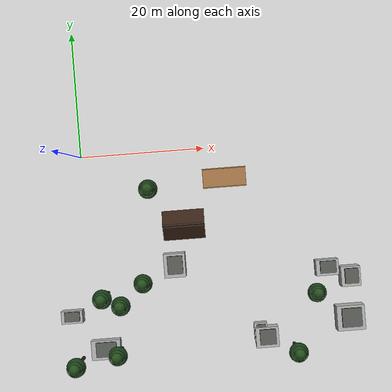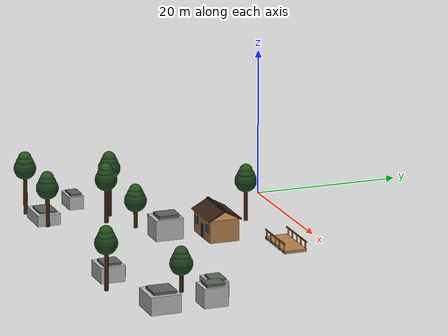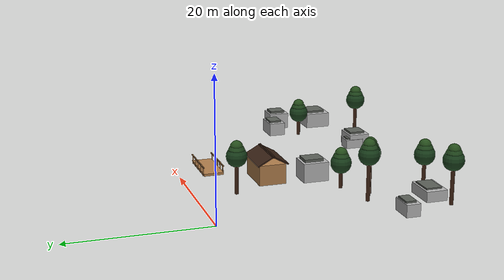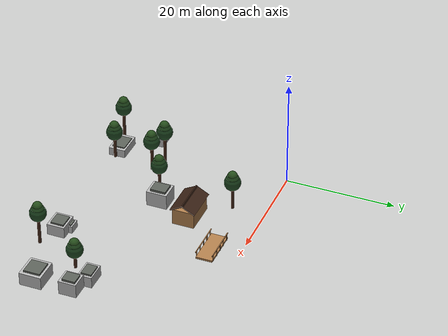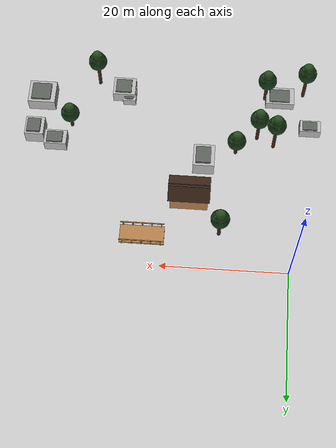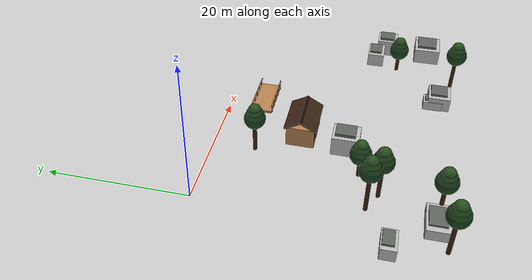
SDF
<sdf version="1.5">
 <world name="forest_rescue">
  <include><uri>model://sun</uri></include>
  <model name="pine_02">
   <static>true</static>
   <pose>11 -6 .003 0 0 0</pose>
   <link name="structure">
    <visual name="trunk_visual">
     <pose>0 0 3.282756484514435 0.0 0 0</pose>
     <geometry><cylinder><radius>0.28</radius><length>6.56551296902887</length></cylinder></geometry>
     <material><ambient>0.24 0.13 0.07 1</ambient><diffuse>0.24 0.13 0.07 1</diffuse></material>
    </visual>
    <collision name="trunk_collision">
     <pose>0 0 3.282756484514435 0.0 0 0</pose>
     <geometry><cylinder><radius>0.28</radius><length>6.56551296902887</length></cylinder></geometry>
    </collision>
    <visual name="canopy0_visual">
     <pose>0 0 5.46551296902887 0.0 0 0</pose>
     <geometry><sphere><radius>1.5</radius></sphere></geometry>
     <material><ambient>0.1 0.25 0.11 1</ambient><diffuse>0.1 0.25 0.11 1</diffuse></material>
    </visual>
    <collision name="canopy0_collision">
     <pose>0 0 5.46551296902887 0.0 0 0</pose>
     <geometry><sphere><radius>1.5</radius></sphere></geometry>
    </collision>
    <visual name="canopy1_visual">
     <pose>0 0 6.16551296902887 0.0 0 0</pose>
     <geometry><sphere><radius>1.2</radius></sphere></geometry>
     <material><ambient>0.125 0.28 0.11 1</ambient><diffuse>0.125 0.28 0.11 1</diffuse></material>
    </visual>
    <collision name="canopy1_collision">
     <pose>0 0 6.16551296902887 0.0 0 0</pose>
     <geometry><sphere><radius>1.2</radius></sphere></geometry>
    </collision>
    <visual name="canopy2_visual">
     <pose>0 0 6.86551296902887 0.0 0 0</pose>
     <geometry><sphere><radius>0.9</radius></sphere></geometry>
     <material>
      <ambient>0.15000000000000002 0.31 0.11 1</ambient>
      <diffuse>0.15000000000000002 0.31 0.11 1</diffuse>
     </material>
    </visual>
    <collision name="canopy2_collision">
     <pose>0 0 6.86551296902887 0.0 0 0</pose>
     <geometry><sphere><radius>0.9</radius></sphere></geometry>
    </collision>
   </link>
  </model>
  <model name="pine_10">
   <static>true</static>
   <pose>4.401859159384514 -31.439571008390693 .003 0 0 0</pose>
   <link name="structure">
    <visual name="trunk_visual">
     <pose>0 0 3.1897114368823436 0.0 0 0</pose>
     <geometry><cylinder><radius>0.28</radius><length>6.379422873764687</length></cylinder></geometry>
     <material><ambient>0.24 0.13 0.07 1</ambient><diffuse>0.24 0.13 0.07 1</diffuse></material>
    </visual>
    <collision name="trunk_collision">
     <pose>0 0 3.1897114368823436 0.0 0 0</pose>
     <geometry><cylinder><radius>0.28</radius><length>6.379422873764687</length></cylinder></geometry>
    </collision>
    <visual name="canopy0_visual">
     <pose>0 0 5.2794228737646876 0.0 0 0</pose>
     <geometry><sphere><radius>1.5</radius></sphere></geometry>
     <material><ambient>0.1 0.25 0.11 1</ambient><diffuse>0.1 0.25 0.11 1</diffuse></material>
    </visual>
    <collision name="canopy0_collision">
     <pose>0 0 5.2794228737646876 0.0 0 0</pose>
     <geometry><sphere><radius>1.5</radius></sphere></geometry>
    </collision>
    <visual name="canopy1_visual">
     <pose>0 0 5.979422873764688 0.0 0 0</pose>
     <geometry><sphere><radius>1.2</radius></sphere></geometry>
     <material><ambient>0.125 0.28 0.11 1</ambient><diffuse>0.125 0.28 0.11 1</diffuse></material>
    </visual>
    <collision name="canopy1_collision">
     <pose>0 0 5.979422873764688 0.0 0 0</pose>
     <geometry><sphere><radius>1.2</radius></sphere></geometry>
    </collision>
    <visual name="canopy2_visual">
     <pose>0 0 6.679422873764688 0.0 0 0</pose>
     <geometry><sphere><radius>0.9</radius></sphere></geometry>
     <material>
      <ambient>0.15000000000000002 0.31 0.11 1</ambient>
      <diffuse>0.15000000000000002 0.31 0.11 1</diffuse>
     </material>
    </visual>
    <collision name="canopy2_collision">
     <pose>0 0 6.679422873764688 0.0 0 0</pose>
     <geometry><sphere><radius>0.9</radius></sphere></geometry>
    </collision>
   </link>
  </model>
  <model name="pine_11">
   <static>true</static>
   <pose>32.27721918303213 -32.773296746654836 .003 0 0 0</pose>
   <link name="structure">
    <visual name="trunk_visual">
     <pose>0 0 3.6586376060321912 0.0 0 0</pose>
     <geometry><cylinder><radius>0.28</radius><length>7.3172752120643825</length></cylinder></geometry>
     <material><ambient>0.24 0.13 0.07 1</ambient><diffuse>0.24 0.13 0.07 1</diffuse></material>
    </visual>
    <collision name="trunk_collision">
     <pose>0 0 3.6586376060321912 0.0 0 0</pose>
     <geometry><cylinder><radius>0.28</radius><length>7.3172752120643825</length></cylinder></geometry>
    </collision>
    <visual name="canopy0_visual">
     <pose>0 0 6.217275212064383 0.0 0 0</pose>
     <geometry><sphere><radius>1.5</radius></sphere></geometry>
     <material><ambient>0.1 0.25 0.11 1</ambient><diffuse>0.1 0.25 0.11 1</diffuse></material>
    </visual>
    <collision name="canopy0_collision">
     <pose>0 0 6.217275212064383 0.0 0 0</pose>
     <geometry><sphere><radius>1.5</radius></sphere></geometry>
    </collision>
    <visual name="canopy1_visual">
     <pose>0 0 6.917275212064383 0.0 0 0</pose>
     <geometry><sphere><radius>1.2</radius></sphere></geometry>
     <material><ambient>0.125 0.28 0.11 1</ambient><diffuse>0.125 0.28 0.11 1</diffuse></material>
    </visual>
    <collision name="canopy1_collision">
     <pose>0 0 6.917275212064383 0.0 0 0</pose>
     <geometry><sphere><radius>1.2</radius></sphere></geometry>
    </collision>
    <visual name="canopy2_visual">
     <pose>0 0 7.617275212064383 0.0 0 0</pose>
     <geometry><sphere><radius>0.9</radius></sphere></geometry>
     <material>
      <ambient>0.15000000000000002 0.31 0.11 1</ambient>
      <diffuse>0.15000000000000002 0.31 0.11 1</diffuse>
     </material>
    </visual>
    <collision name="canopy2_collision">
     <pose>0 0 7.617275212064383 0.0 0 0</pose>
     <geometry><sphere><radius>0.9</radius></sphere></geometry>
    </collision>
   </link>
  </model>
  <model name="pine_12">
   <static>true</static>
   <pose>2.8257024292998025 -22.289685519481477 .003 0 0 0</pose>
   <link name="structure">
    <visual name="trunk_visual">
     <pose>0 0 3.8603250835250256 0.0 0 0</pose>
     <geometry><cylinder><radius>0.28</radius><length>7.720650167050051</length></cylinder></geometry>
     <material><ambient>0.24 0.13 0.07 1</ambient><diffuse>0.24 0.13 0.07 1</diffuse></material>
    </visual>
    <collision name="trunk_collision">
     <pose>0 0 3.8603250835250256 0.0 0 0</pose>
     <geometry><cylinder><radius>0.28</radius><length>7.720650167050051</length></cylinder></geometry>
    </collision>
    <visual name="canopy0_visual">
     <pose>0 0 6.6206501670500515 0.0 0 0</pose>
     <geometry><sphere><radius>1.5</radius></sphere></geometry>
     <material><ambient>0.1 0.25 0.11 1</ambient><diffuse>0.1 0.25 0.11 1</diffuse></material>
    </visual>
    <collision name="canopy0_collision">
     <pose>0 0 6.6206501670500515 0.0 0 0</pose>
     <geometry><sphere><radius>1.5</radius></sphere></geometry>
    </collision>
    <visual name="canopy1_visual">
     <pose>0 0 7.320650167050052 0.0 0 0</pose>
     <geometry><sphere><radius>1.2</radius></sphere></geometry>
     <material><ambient>0.125 0.28 0.11 1</ambient><diffuse>0.125 0.28 0.11 1</diffuse></material>
    </visual>
    <collision name="canopy1_collision">
     <pose>0 0 7.320650167050052 0.0 0 0</pose>
     <geometry><sphere><radius>1.2</radius></sphere></geometry>
    </collision>
    <visual name="canopy2_visual">
     <pose>0 0 8.020650167050052 0.0 0 0</pose>
     <geometry><sphere><radius>0.9</radius></sphere></geometry>
     <material>
      <ambient>0.15000000000000002 0.31 0.11 1</ambient>
      <diffuse>0.15000000000000002 0.31 0.11 1</diffuse>
     </material>
    </visual>
    <collision name="canopy2_collision">
     <pose>0 0 8.020650167050052 0.0 0 0</pose>
     <geometry><sphere><radius>0.9</radius></sphere></geometry>
    </collision>
   </link>
  </model>
  <model name="pine_16">
   <static>true</static>
   <pose>36.11785193479706 -24.22285921925056 .003 0 0 0</pose>
   <link name="structure">
    <visual name="trunk_visual">
     <pose>0 0 2.412386381699358 0.0 0 0</pose>
     <geometry><cylinder><radius>0.28</radius><length>4.824772763398716</length></cylinder></geometry>
     <material><ambient>0.24 0.13 0.07 1</ambient><diffuse>0.24 0.13 0.07 1</diffuse></material>
    </visual>
    <collision name="trunk_collision">
     <pose>0 0 2.412386381699358 0.0 0 0</pose>
     <geometry><cylinder><radius>0.28</radius><length>4.824772763398716</length></cylinder></geometry>
    </collision>
    <visual name="canopy0_visual">
     <pose>0 0 3.724772763398716 0.0 0 0</pose>
     <geometry><sphere><radius>1.5</radius></sphere></geometry>
     <material><ambient>0.1 0.25 0.11 1</ambient><diffuse>0.1 0.25 0.11 1</diffuse></material>
    </visual>
    <collision name="canopy0_collision">
     <pose>0 0 3.724772763398716 0.0 0 0</pose>
     <geometry><sphere><radius>1.5</radius></sphere></geometry>
    </collision>
    <visual name="canopy1_visual">
     <pose>0 0 4.424772763398716 0.0 0 0</pose>
     <geometry><sphere><radius>1.2</radius></sphere></geometry>
     <material><ambient>0.125 0.28 0.11 1</ambient><diffuse>0.125 0.28 0.11 1</diffuse></material>
    </visual>
    <collision name="canopy1_collision">
     <pose>0 0 4.424772763398716 0.0 0 0</pose>
     <geometry><sphere><radius>1.2</radius></sphere></geometry>
    </collision>
    <visual name="canopy2_visual">
     <pose>0 0 5.124772763398716 0.0 0 0</pose>
     <geometry><sphere><radius>0.9</radius></sphere></geometry>
     <material>
      <ambient>0.15000000000000002 0.31 0.11 1</ambient>
      <diffuse>0.15000000000000002 0.31 0.11 1</diffuse>
     </material>
    </visual>
    <collision name="canopy2_collision">
     <pose>0 0 5.124772763398716 0.0 0 0</pose>
     <geometry><sphere><radius>0.9</radius></sphere></geometry>
    </collision>
   </link>
  </model>
  <model name="pine_18">
   <static>true</static>
   <pose>-1.957581145798457 -32.48798483389393 .003 0 0 0</pose>
   <link name="structure">
    <visual name="trunk_visual">
     <pose>0 0 3.7181511870655912 0.0 0 0</pose>
     <geometry><cylinder><radius>0.28</radius><length>7.4363023741311824</length></cylinder></geometry>
     <material><ambient>0.24 0.13 0.07 1</ambient><diffuse>0.24 0.13 0.07 1</diffuse></material>
    </visual>
    <collision name="trunk_collision">
     <pose>0 0 3.7181511870655912 0.0 0 0</pose>
     <geometry><cylinder><radius>0.28</radius><length>7.4363023741311824</length></cylinder></geometry>
    </collision>
    <visual name="canopy0_visual">
     <pose>0 0 6.336302374131183 0.0 0 0</pose>
     <geometry><sphere><radius>1.5</radius></sphere></geometry>
     <material><ambient>0.1 0.25 0.11 1</ambient><diffuse>0.1 0.25 0.11 1</diffuse></material>
    </visual>
    <collision name="canopy0_collision">
     <pose>0 0 6.336302374131183 0.0 0 0</pose>
     <geometry><sphere><radius>1.5</radius></sphere></geometry>
    </collision>
    <visual name="canopy1_visual">
     <pose>0 0 7.036302374131183 0.0 0 0</pose>
     <geometry><sphere><radius>1.2</radius></sphere></geometry>
     <material><ambient>0.125 0.28 0.11 1</ambient><diffuse>0.125 0.28 0.11 1</diffuse></material>
    </visual>
    <collision name="canopy1_collision">
     <pose>0 0 7.036302374131183 0.0 0 0</pose>
     <geometry><sphere><radius>1.2</radius></sphere></geometry>
    </collision>
    <visual name="canopy2_visual">
     <pose>0 0 7.736302374131183 0.0 0 0</pose>
     <geometry><sphere><radius>0.9</radius></sphere></geometry>
     <material>
      <ambient>0.15000000000000002 0.31 0.11 1</ambient>
      <diffuse>0.15000000000000002 0.31 0.11 1</diffuse>
     </material>
    </visual>
    <collision name="canopy2_collision">
     <pose>0 0 7.736302374131183 0.0 0 0</pose>
     <geometry><sphere><radius>0.9</radius></sphere></geometry>
    </collision>
   </link>
  </model>
  <model name="pine_22">
   <static>true</static>
   <pose>8.935093009944204 -20.753271993344555 .003 0 0 0</pose>
   <link name="structure">
    <visual name="trunk_visual">
     <pose>0 0 2.399018562959947 0.0 0 0</pose>
     <geometry><cylinder><radius>0.28</radius><length>4.798037125919894</length></cylinder></geometry>
     <material><ambient>0.24 0.13 0.07 1</ambient><diffuse>0.24 0.13 0.07 1</diffuse></material>
    </visual>
    <collision name="trunk_collision">
     <pose>0 0 2.399018562959947 0.0 0 0</pose>
     <geometry><cylinder><radius>0.28</radius><length>4.798037125919894</length></cylinder></geometry>
    </collision>
    <visual name="canopy0_visual">
     <pose>0 0 3.698037125919894 0.0 0 0</pose>
     <geometry><sphere><radius>1.5</radius></sphere></geometry>
     <material><ambient>0.1 0.25 0.11 1</ambient><diffuse>0.1 0.25 0.11 1</diffuse></material>
    </visual>
    <collision name="canopy0_collision">
     <pose>0 0 3.698037125919894 0.0 0 0</pose>
     <geometry><sphere><radius>1.5</radius></sphere></geometry>
    </collision>
    <visual name="canopy1_visual">
     <pose>0 0 4.398037125919894 0.0 0 0</pose>
     <geometry><sphere><radius>1.2</radius></sphere></geometry>
     <material><ambient>0.125 0.28 0.11 1</ambient><diffuse>0.125 0.28 0.11 1</diffuse></material>
    </visual>
    <collision name="canopy1_collision">
     <pose>0 0 4.398037125919894 0.0 0 0</pose>
     <geometry><sphere><radius>1.2</radius></sphere></geometry>
    </collision>
    <visual name="canopy2_visual">
     <pose>0 0 5.098037125919894 0.0 0 0</pose>
     <geometry><sphere><radius>0.9</radius></sphere></geometry>
     <material>
      <ambient>0.15000000000000002 0.31 0.11 1</ambient>
      <diffuse>0.15000000000000002 0.31 0.11 1</diffuse>
     </material>
    </visual>
    <collision name="canopy2_collision">
     <pose>0 0 5.098037125919894 0.0 0 0</pose>
     <geometry><sphere><radius>0.9</radius></sphere></geometry>
    </collision>
   </link>
  </model>
  <model name="pine_29">
   <static>true</static>
   <pose>5.519893759275888 -23.657242225206538 .003 0 0 0</pose>
   <link name="structure">
    <visual name="trunk_visual">
     <pose>0 0 3.5185168855151288 0.0 0 0</pose>
     <geometry><cylinder><radius>0.28</radius><length>7.0370337710302575</length></cylinder></geometry>
     <material><ambient>0.24 0.13 0.07 1</ambient><diffuse>0.24 0.13 0.07 1</diffuse></material>
    </visual>
    <collision name="trunk_collision">
     <pose>0 0 3.5185168855151288 0.0 0 0</pose>
     <geometry><cylinder><radius>0.28</radius><length>7.0370337710302575</length></cylinder></geometry>
    </collision>
    <visual name="canopy0_visual">
     <pose>0 0 5.937033771030258 0.0 0 0</pose>
     <geometry><sphere><radius>1.5</radius></sphere></geometry>
     <material><ambient>0.1 0.25 0.11 1</ambient><diffuse>0.1 0.25 0.11 1</diffuse></material>
    </visual>
    <collision name="canopy0_collision">
     <pose>0 0 5.937033771030258 0.0 0 0</pose>
     <geometry><sphere><radius>1.5</radius></sphere></geometry>
    </collision>
    <visual name="canopy1_visual">
     <pose>0 0 6.637033771030258 0.0 0 0</pose>
     <geometry><sphere><radius>1.2</radius></sphere></geometry>
     <material><ambient>0.125 0.28 0.11 1</ambient><diffuse>0.125 0.28 0.11 1</diffuse></material>
    </visual>
    <collision name="canopy1_collision">
     <pose>0 0 6.637033771030258 0.0 0 0</pose>
     <geometry><sphere><radius>1.2</radius></sphere></geometry>
    </collision>
    <visual name="canopy2_visual">
     <pose>0 0 7.337033771030258 0.0 0 0</pose>
     <geometry><sphere><radius>0.9</radius></sphere></geometry>
     <material>
      <ambient>0.15000000000000002 0.31 0.11 1</ambient>
      <diffuse>0.15000000000000002 0.31 0.11 1</diffuse>
     </material>
    </visual>
    <collision name="canopy2_collision">
     <pose>0 0 7.337033771030258 0.0 0 0</pose>
     <geometry><sphere><radius>0.9</radius></sphere></geometry>
    </collision>
   </link>
  </model>
  <model name="rock_06">
   <static>true</static>
   <pose>27.91122752140977 -31.016599547149305 .003 0 0 0</pose>
   <link name="structure">
    <visual name="stone_visual">
     <pose>0 0 1.0519309696424304 0.0 0 0</pose>
     <geometry><box><size>3.667579216460121 3.225950871608717 2.1038619392848608</size></box></geometry>
     <material>
      <script>
       <uri>file:///home/fxxk/px4_agent/scene/materials/scripts</uri>
       <uri>file:///home/fxxk/px4_agent/scene/materials/textures</uri>
       <name>Yard/concrete</name>
      </script>
     </material>
    </visual>
    <collision name="stone_collision">
     <pose>0 0 1.0519309696424304 0.0 0 0</pose>
     <geometry><box><size>3.667579216460121 3.225950871608717 2.1038619392848608</size></box></geometry>
    </collision>
    <visual name="cap_visual">
     <pose>0.1 0.1 2.1038619392848608 0.0 0 0</pose>
     <geometry><box><size>2.5673054515220843 2.4194631537065376 0.6311585817854583</size></box></geometry>
     <material><ambient>0.36 0.38 0.35 1</ambient><diffuse>0.36 0.38 0.35 1</diffuse></material>
    </visual>
    <collision name="cap_collision">
     <pose>0.1 0.1 2.1038619392848608 0.0 0 0</pose>
     <geometry><box><size>2.5673054515220843 2.4194631537065376 0.6311585817854583</size></box></geometry>
    </collision>
   </link>
  </model>
  <model name="rock_07">
   <static>true</static>
   <pose>41.8402032680344 -22.246830806683267 .003 0 0 0</pose>
   <link name="structure">
    <visual name="stone_visual">
     <pose>0 0 1.2779544305672321 0.0 0 0</pose>
     <geometry><box><size>3.066547165417459 3.183017940721278 2.5559088611344642</size></box></geometry>
     <material>
      <script>
       <uri>file:///home/fxxk/px4_agent/scene/materials/scripts</uri>
       <uri>file:///home/fxxk/px4_agent/scene/materials/textures</uri>
       <name>Yard/concrete</name>
      </script>
     </material>
    </visual>
    <collision name="stone_collision">
     <pose>0 0 1.2779544305672321 0.0 0 0</pose>
     <geometry><box><size>3.066547165417459 3.183017940721278 2.5559088611344642</size></box></geometry>
    </collision>
    <visual name="cap_visual">
     <pose>0.1 0.1 2.5559088611344642 0.0 0 0</pose>
     <geometry><box><size>2.1465830157922214 2.3872634555409586 0.7667726583403393</size></box></geometry>
     <material><ambient>0.36 0.38 0.35 1</ambient><diffuse>0.36 0.38 0.35 1</diffuse></material>
    </visual>
    <collision name="cap_collision">
     <pose>0.1 0.1 2.5559088611344642 0.0 0 0</pose>
     <geometry><box><size>2.1465830157922214 2.3872634555409586 0.7667726583403393</size></box></geometry>
    </collision>
   </link>
  </model>
  <model name="rock_08">
   <static>true</static>
   <pose>1.9577344423728462 -31.190890357344145 .003 0 0 0</pose>
   <link name="structure">
    <visual name="stone_visual">
     <pose>0 0 0.7681274315273037 0.0 0 0</pose>
     <geometry><box><size>4.695873700915582 3.1069405490903774 1.5362548630546073</size></box></geometry>
     <material>
      <script>
       <uri>file:///home/fxxk/px4_agent/scene/materials/scripts</uri>
       <uri>file:///home/fxxk/px4_agent/scene/materials/textures</uri>
       <name>Yard/concrete</name>
      </script>
     </material>
    </visual>
    <collision name="stone_collision">
     <pose>0 0 0.7681274315273037 0.0 0 0</pose>
     <geometry><box><size>4.695873700915582 3.1069405490903774 1.5362548630546073</size></box></geometry>
    </collision>
    <visual name="cap_visual">
     <pose>0.1 0.1 1.5362548630546073 0.0 0 0</pose>
     <geometry><box><size>3.287111590640907 2.330205411817783 0.4608764589163822</size></box></geometry>
     <material><ambient>0.36 0.38 0.35 1</ambient><diffuse>0.36 0.38 0.35 1</diffuse></material>
    </visual>
    <collision name="cap_collision">
     <pose>0.1 0.1 1.5362548630546073 0.0 0 0</pose>
     <geometry><box><size>3.287111590640907 2.330205411817783 0.4608764589163822</size></box></geometry>
    </collision>
   </link>
  </model>
  <model name="rock_09">
   <static>true</static>
   <pose>-3.0545503986861533 -25.50754463442579 .003 0 0 0</pose>
   <link name="structure">
    <visual name="stone_visual">
     <pose>0 0 0.8951410001223327 0.0 0 0</pose>
     <geometry><box><size>3.424779000568506 2.024200071308571 1.7902820002446653</size></box></geometry>
     <material>
      <script>
       <uri>file:///home/fxxk/px4_agent/scene/materials/scripts</uri>
       <uri>file:///home/fxxk/px4_agent/scene/materials/textures</uri>
       <name>Yard/concrete</name>
      </script>
     </material>
    </visual>
    <collision name="stone_collision">
     <pose>0 0 0.8951410001223327 0.0 0 0</pose>
     <geometry><box><size>3.424779000568506 2.024200071308571 1.7902820002446653</size></box></geometry>
    </collision>
    <visual name="cap_visual">
     <pose>0.1 0.1 1.7902820002446653 0.0 0 0</pose>
     <geometry><box><size>2.397345300397954 1.5181500534814283 0.5370846000733995</size></box></geometry>
     <material><ambient>0.36 0.38 0.35 1</ambient><diffuse>0.36 0.38 0.35 1</diffuse></material>
    </visual>
    <collision name="cap_collision">
     <pose>0.1 0.1 1.7902820002446653 0.0 0 0</pose>
     <geometry><box><size>2.397345300397954 1.5181500534814283 0.5370846000733995</size></box></geometry>
    </collision>
   </link>
  </model>
  <model name="rock_11">
   <static>true</static>
   <pose>14.03983800665118 -18.3858984677448 .003 0 0 0</pose>
   <link name="structure">
    <visual name="stone_visual">
     <pose>0 0 1.4183862679159764 0.0 0 0</pose>
     <geometry><box><size>3.4151366437279282 3.8121686920734246 2.836772535831953</size></box></geometry>
     <material>
      <script>
       <uri>file:///home/fxxk/px4_agent/scene/materials/scripts</uri>
       <uri>file:///home/fxxk/px4_agent/scene/materials/textures</uri>
       <name>Yard/concrete</name>
      </script>
     </material>
    </visual>
    <collision name="stone_collision">
     <pose>0 0 1.4183862679159764 0.0 0 0</pose>
     <geometry><box><size>3.4151366437279282 3.8121686920734246 2.836772535831953</size></box></geometry>
    </collision>
    <visual name="cap_visual">
     <pose>0.1 0.1 2.836772535831953 0.0 0 0</pose>
     <geometry><box><size>2.3905956506095496 2.8591265190550685 0.8510317607495859</size></box></geometry>
     <material><ambient>0.36 0.38 0.35 1</ambient><diffuse>0.36 0.38 0.35 1</diffuse></material>
    </visual>
    <collision name="cap_collision">
     <pose>0.1 0.1 2.836772535831953 0.0 0 0</pose>
     <geometry><box><size>2.3905956506095496 2.8591265190550685 0.8510317607495859</size></box></geometry>
    </collision>
   </link>
  </model>
  <model name="rock_12">
   <static>true</static>
   <pose>41.41966594398676 -28.89260681510286 .003 0 0 0</pose>
   <link name="structure">
    <visual name="stone_visual">
     <pose>0 0 1.1830415971940624 0.0 0 0</pose>
     <geometry><box><size>4.4600029700412875 3.9705838564955958 2.366083194388125</size></box></geometry>
     <material>
      <script>
       <uri>file:///home/fxxk/px4_agent/scene/materials/scripts</uri>
       <uri>file:///home/fxxk/px4_agent/scene/materials/textures</uri>
       <name>Yard/concrete</name>
      </script>
     </material>
    </visual>
    <collision name="stone_collision">
     <pose>0 0 1.1830415971940624 0.0 0 0</pose>
     <geometry><box><size>4.4600029700412875 3.9705838564955958 2.366083194388125</size></box></geometry>
    </collision>
    <visual name="cap_visual">
     <pose>0.1 0.1 2.366083194388125 0.0 0 0</pose>
     <geometry><box><size>3.122002079028901 2.977937892371697 0.7098249583164374</size></box></geometry>
     <material><ambient>0.36 0.38 0.35 1</ambient><diffuse>0.36 0.38 0.35 1</diffuse></material>
    </visual>
    <collision name="cap_collision">
     <pose>0.1 0.1 2.366083194388125 0.0 0 0</pose>
     <geometry><box><size>3.122002079028901 2.977937892371697 0.7098249583164374</size></box></geometry>
    </collision>
   </link>
  </model>
  <model name="rock_13">
   <static>true</static>
   <pose>26.986340342309234 -30.142735325472295 .003 0 0 0</pose>
   <link name="structure">
    <visual name="stone_visual">
     <pose>0 0 0.6841087649923758 0.0 0 0</pose>
     <geometry><box><size>2.0897932913267048 2.7999586879305074 1.3682175299847517</size></box></geometry>
     <material>
      <script>
       <uri>file:///home/fxxk/px4_agent/scene/materials/scripts</uri>
       <uri>file:///home/fxxk/px4_agent/scene/materials/textures</uri>
       <name>Yard/concrete</name>
      </script>
     </material>
    </visual>
    <collision name="stone_collision">
     <pose>0 0 0.6841087649923758 0.0 0 0</pose>
     <geometry><box><size>2.0897932913267048 2.7999586879305074 1.3682175299847517</size></box></geometry>
    </collision>
    <visual name="cap_visual">
     <pose>0.1 0.1 1.3682175299847517 0.0 0 0</pose>
     <geometry><box><size>1.4628553039286933 2.0999690159478805 0.41046525899542546</size></box></geometry>
     <material><ambient>0.36 0.38 0.35 1</ambient><diffuse>0.36 0.38 0.35 1</diffuse></material>
    </visual>
    <collision name="cap_collision">
     <pose>0.1 0.1 1.3682175299847517 0.0 0 0</pose>
     <geometry><box><size>1.4628553039286933 2.0999690159478805 0.41046525899542546</size></box></geometry>
    </collision>
   </link>
  </model>
  <model name="rock_14">
   <static>true</static>
   <pose>38.307313925781045 -20.633118507575396 .003 0 0 0</pose>
   <link name="structure">
    <visual name="stone_visual">
     <pose>0 0 1.0209708095353074 0.0 0 0</pose>
     <geometry><box><size>3.6161035357938367 2.538870012117889 2.0419416190706148</size></box></geometry>
     <material>
      <script>
       <uri>file:///home/fxxk/px4_agent/scene/materials/scripts</uri>
       <uri>file:///home/fxxk/px4_agent/scene/materials/textures</uri>
       <name>Yard/concrete</name>
      </script>
     </material>
    </visual>
    <collision name="stone_collision">
     <pose>0 0 1.0209708095353074 0.0 0 0</pose>
     <geometry><box><size>3.6161035357938367 2.538870012117889 2.0419416190706148</size></box></geometry>
    </collision>
    <visual name="cap_visual">
     <pose>0.1 0.1 2.0419416190706148 0.0 0 0</pose>
     <geometry><box><size>2.5312724750556854 1.9041525090884168 0.6125824857211845</size></box></geometry>
     <material><ambient>0.36 0.38 0.35 1</ambient><diffuse>0.36 0.38 0.35 1</diffuse></material>
    </visual>
    <collision name="cap_collision">
     <pose>0.1 0.1 2.0419416190706148 0.0 0 0</pose>
     <geometry><box><size>2.5312724750556854 1.9041525090884168 0.6125824857211845</size></box></geometry>
    </collision>
   </link>
  </model>
  <model name="woodland_cabin_0">
   <static>true</static>
   <pose>16 -12 .003 0 0 0</pose>
   <link name="structure">
    <visual name="walls_visual">
     <pose>0 0 1.5 0.0 0 0</pose>
     <geometry><box><size>6 4 3</size></box></geometry>
     <material>
      <script>
       <uri>file:///home/fxxk/px4_agent/scene/materials/scripts</uri>
       <uri>file:///home/fxxk/px4_agent/scene/materials/textures</uri>
       <name>Yard/wood</name>
      </script>
     </material>
    </visual>
    <collision name="walls_collision">
     <pose>0 0 1.5 0.0 0 0</pose>
     <geometry><box><size>6 4 3</size></box></geometry>
    </collision>
    <visual name="roof-1_visual">
     <pose>0 -1.05 3.65 0.5 0 0</pose>
     <geometry><box><size>6.6 2.8 0.18</size></box></geometry>
     <material><ambient>0.22 0.13 0.08 1</ambient><diffuse>0.22 0.13 0.08 1</diffuse></material>
    </visual>
    <collision name="roof-1_collision">
     <pose>0 -1.05 3.65 0.5 0 0</pose>
     <geometry><box><size>6.6 2.8 0.18</size></box></geometry>
    </collision>
    <visual name="roof1_visual">
     <pose>0 1.05 3.65 -0.5 0 0</pose>
     <geometry><box><size>6.6 2.8 0.18</size></box></geometry>
     <material><ambient>0.22 0.13 0.08 1</ambient><diffuse>0.22 0.13 0.08 1</diffuse></material>
    </visual>
    <collision name="roof1_collision">
     <pose>0 1.05 3.65 -0.5 0 0</pose>
     <geometry><box><size>6.6 2.8 0.18</size></box></geometry>
    </collision>
    <visual name="door_visual">
     <pose>0 -2.02 1 0.0 0 0</pose>
     <geometry><box><size>1 0.03 2</size></box></geometry>
     <material><ambient>0.12 0.08 0.04 1</ambient><diffuse>0.12 0.08 0.04 1</diffuse></material>
    </visual>
    <visual name="window-2_visual">
     <pose>-2 -2.03 1.8 0.0 0 0</pose>
     <geometry><box><size>1 0.04 1</size></box></geometry>
     <material><ambient>0.17 0.4 0.48 1</ambient><diffuse>0.17 0.4 0.48 1</diffuse></material>
    </visual>
    <visual name="window2_visual">
     <pose>2 -2.03 1.8 0.0 0 0</pose>
     <geometry><box><size>1 0.04 1</size></box></geometry>
     <material><ambient>0.17 0.4 0.48 1</ambient><diffuse>0.17 0.4 0.48 1</diffuse></material>
    </visual>
   </link>
  </model>
  <model name="footbridge">
   <static>true</static>
   <pose>23 -5 .003 0 0 0</pose>
   <link name="structure">
    <visual name="deck_visual">
     <pose>0 0 0.2 0.0 0 0</pose>
     <geometry><box><size>7 3 0.35</size></box></geometry>
     <material>
      <script>
       <uri>file:///home/fxxk/px4_agent/scene/materials/scripts</uri>
       <uri>file:///home/fxxk/px4_agent/scene/materials/textures</uri>
       <name>Yard/wood</name>
      </script>
     </material>
    </visual>
    <collision name="deck_collision">
     <pose>0 0 0.2 0.0 0 0</pose>
     <geometry><box><size>7 3 0.35</size></box></geometry>
    </collision>
    <visual name="rail-1_visual">
     <pose>0 -1.5 1.3 0.0 0 0</pose>
     <geometry><box><size>7 0.14 0.15</size></box></geometry>
     <material>
      <script>
       <uri>file:///home/fxxk/px4_agent/scene/materials/scripts</uri>
       <uri>file:///home/fxxk/px4_agent/scene/materials/textures</uri>
       <name>Yard/wood</name>
      </script>
     </material>
    </visual>
    <collision name="rail-1_collision">
     <pose>0 -1.5 1.3 0.0 0 0</pose>
     <geometry><box><size>7 0.14 0.15</size></box></geometry>
    </collision>
    <visual name="post-1_0_visual">
     <pose>-3.0 -1.5 0.65 0.0 0 0</pose>
     <geometry><box><size>0.15 0.15 1.3</size></box></geometry>
     <material>
      <script>
       <uri>file:///home/fxxk/px4_agent/scene/materials/scripts</uri>
       <uri>file:///home/fxxk/px4_agent/scene/materials/textures</uri>
       <name>Yard/wood</name>
      </script>
     </material>
    </visual>
    <collision name="post-1_0_collision">
     <pose>-3.0 -1.5 0.65 0.0 0 0</pose>
     <geometry><box><size>0.15 0.15 1.3</size></box></geometry>
    </collision>
    <visual name="post-1_1_visual">
     <pose>-1.5 -1.5 0.65 0.0 0 0</pose>
     <geometry><box><size>0.15 0.15 1.3</size></box></geometry>
     <material>
      <script>
       <uri>file:///home/fxxk/px4_agent/scene/materials/scripts</uri>
       <uri>file:///home/fxxk/px4_agent/scene/materials/textures</uri>
       <name>Yard/wood</name>
      </script>
     </material>
    </visual>
    <collision name="post-1_1_collision">
     <pose>-1.5 -1.5 0.65 0.0 0 0</pose>
     <geometry><box><size>0.15 0.15 1.3</size></box></geometry>
    </collision>
    <visual name="post-1_2_visual">
     <pose>0.0 -1.5 0.65 0.0 0 0</pose>
     <geometry><box><size>0.15 0.15 1.3</size></box></geometry>
     <material>
      <script>
       <uri>file:///home/fxxk/px4_agent/scene/materials/scripts</uri>
       <uri>file:///home/fxxk/px4_agent/scene/materials/textures</uri>
       <name>Yard/wood</name>
      </script>
     </material>
    </visual>
    <collision name="post-1_2_collision">
     <pose>0.0 -1.5 0.65 0.0 0 0</pose>
     <geometry><box><size>0.15 0.15 1.3</size></box></geometry>
    </collision>
    <visual name="post-1_3_visual">
     <pose>1.5 -1.5 0.65 0.0 0 0</pose>
     <geometry><box><size>0.15 0.15 1.3</size></box></geometry>
     <material>
      <script>
       <uri>file:///home/fxxk/px4_agent/scene/materials/scripts</uri>
       <uri>file:///home/fxxk/px4_agent/scene/materials/textures</uri>
       <name>Yard/wood</name>
      </script>
     </material>
    </visual>
    <collision name="post-1_3_collision">
     <pose>1.5 -1.5 0.65 0.0 0 0</pose>
     <geometry><box><size>0.15 0.15 1.3</size></box></geometry>
    </collision>
    <visual name="post-1_4_visual">
     <pose>3.0 -1.5 0.65 0.0 0 0</pose>
     <geometry><box><size>0.15 0.15 1.3</size></box></geometry>
     <material>
      <script>
       <uri>file:///home/fxxk/px4_agent/scene/materials/scripts</uri>
       <uri>file:///home/fxxk/px4_agent/scene/materials/textures</uri>
       <name>Yard/wood</name>
      </script>
     </material>
    </visual>
    <collision name="post-1_4_collision">
     <pose>3.0 -1.5 0.65 0.0 0 0</pose>
     <geometry><box><size>0.15 0.15 1.3</size></box></geometry>
    </collision>
    <visual name="rail1_visual">
     <pose>0 1.5 1.3 0.0 0 0</pose>
     <geometry><box><size>7 0.14 0.15</size></box></geometry>
     <material>
      <script>
       <uri>file:///home/fxxk/px4_agent/scene/materials/scripts</uri>
       <uri>file:///home/fxxk/px4_agent/scene/materials/textures</uri>
       <name>Yard/wood</name>
      </script>
     </material>
    </visual>
    <collision name="rail1_collision">
     <pose>0 1.5 1.3 0.0 0 0</pose>
     <geometry><box><size>7 0.14 0.15</size></box></geometry>
    </collision>
    <visual name="post1_0_visual">
     <pose>-3.0 1.5 0.65 0.0 0 0</pose>
     <geometry><box><size>0.15 0.15 1.3</size></box></geometry>
     <material>
      <script>
       <uri>file:///home/fxxk/px4_agent/scene/materials/scripts</uri>
       <uri>file:///home/fxxk/px4_agent/scene/materials/textures</uri>
       <name>Yard/wood</name>
      </script>
     </material>
    </visual>
    <collision name="post1_0_collision">
     <pose>-3.0 1.5 0.65 0.0 0 0</pose>
     <geometry><box><size>0.15 0.15 1.3</size></box></geometry>
    </collision>
    <visual name="post1_1_visual">
     <pose>-1.5 1.5 0.65 0.0 0 0</pose>
     <geometry><box><size>0.15 0.15 1.3</size></box></geometry>
     <material>
      <script>
       <uri>file:///home/fxxk/px4_agent/scene/materials/scripts</uri>
       <uri>file:///home/fxxk/px4_agent/scene/materials/textures</uri>
       <name>Yard/wood</name>
      </script>
     </material>
    </visual>
    <collision name="post1_1_collision">
     <pose>-1.5 1.5 0.65 0.0 0 0</pose>
     <geometry><box><size>0.15 0.15 1.3</size></box></geometry>
    </collision>
    <visual name="post1_2_visual">
     <pose>0.0 1.5 0.65 0.0 0 0</pose>
     <geometry><box><size>0.15 0.15 1.3</size></box></geometry>
     <material>
      <script>
       <uri>file:///home/fxxk/px4_agent/scene/materials/scripts</uri>
       <uri>file:///home/fxxk/px4_agent/scene/materials/textures</uri>
       <name>Yard/wood</name>
      </script>
     </material>
    </visual>
    <collision name="post1_2_collision">
     <pose>0.0 1.5 0.65 0.0 0 0</pose>
     <geometry><box><size>0.15 0.15 1.3</size></box></geometry>
    </collision>
    <visual name="post1_3_visual">
     <pose>1.5 1.5 0.65 0.0 0 0</pose>
     <geometry><box><size>0.15 0.15 1.3</size></box></geometry>
     <material>
      <script>
       <uri>file:///home/fxxk/px4_agent/scene/materials/scripts</uri>
       <uri>file:///home/fxxk/px4_agent/scene/materials/textures</uri>
       <name>Yard/wood</name>
      </script>
     </material>
    </visual>
    <collision name="post1_3_collision">
     <pose>1.5 1.5 0.65 0.0 0 0</pose>
     <geometry><box><size>0.15 0.15 1.3</size></box></geometry>
    </collision>
    <visual name="post1_4_visual">
     <pose>3.0 1.5 0.65 0.0 0 0</pose>
     <geometry><box><size>0.15 0.15 1.3</size></box></geometry>
     <material>
      <script>
       <uri>file:///home/fxxk/px4_agent/scene/materials/scripts</uri>
       <uri>file:///home/fxxk/px4_agent/scene/materials/textures</uri>
       <name>Yard/wood</name>
      </script>
     </material>
    </visual>
    <collision name="post1_4_collision">
     <pose>3.0 1.5 0.65 0.0 0 0</pose>
     <geometry><box><size>0.15 0.15 1.3</size></box></geometry>
    </collision>
   </link>
  </model>
 </world>
</sdf>
